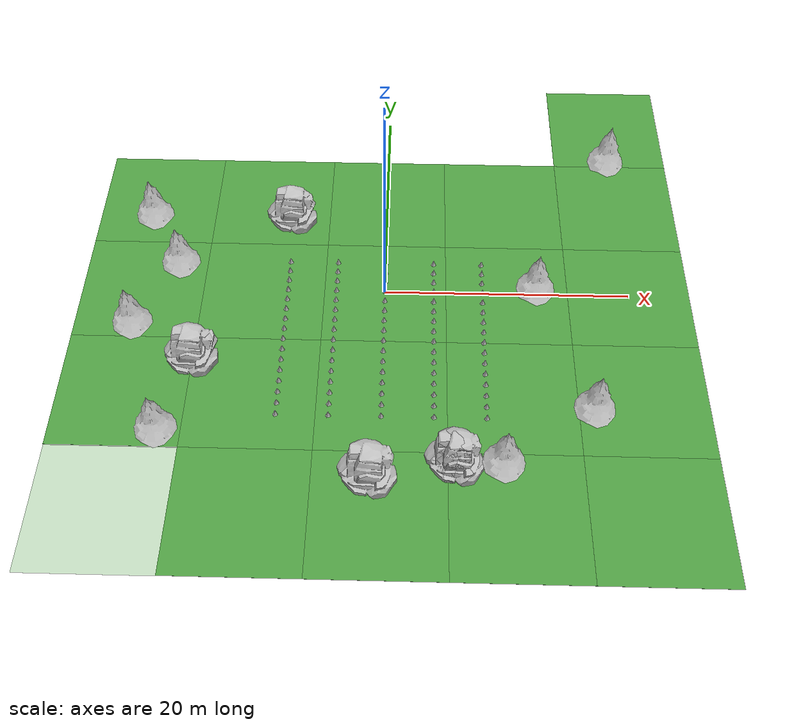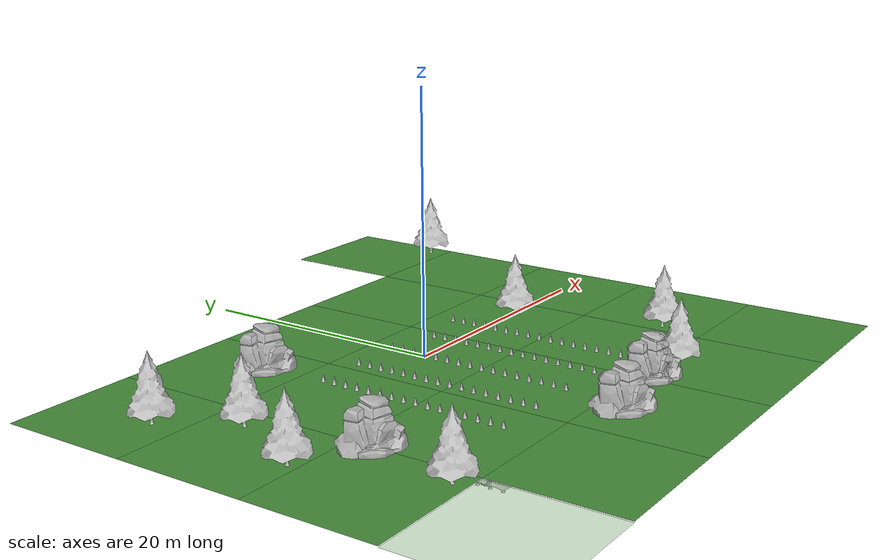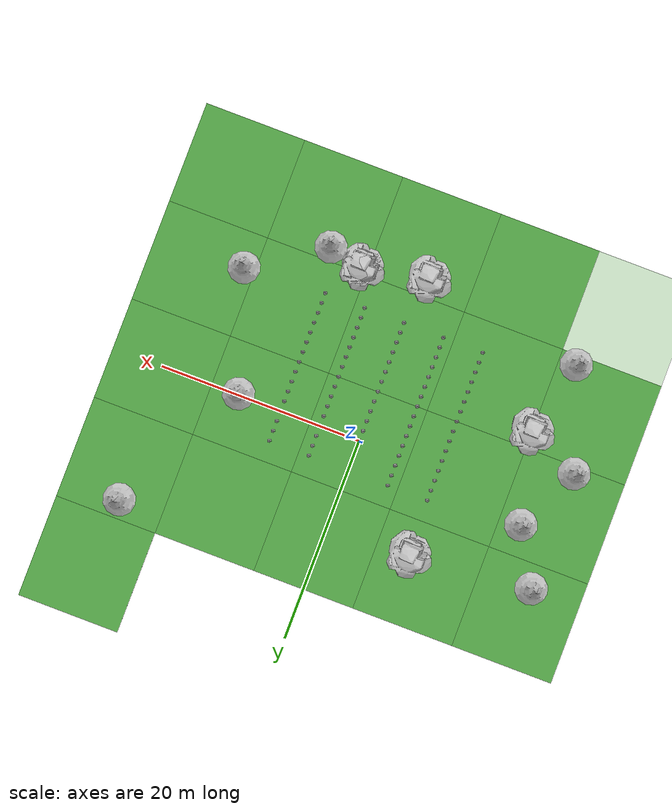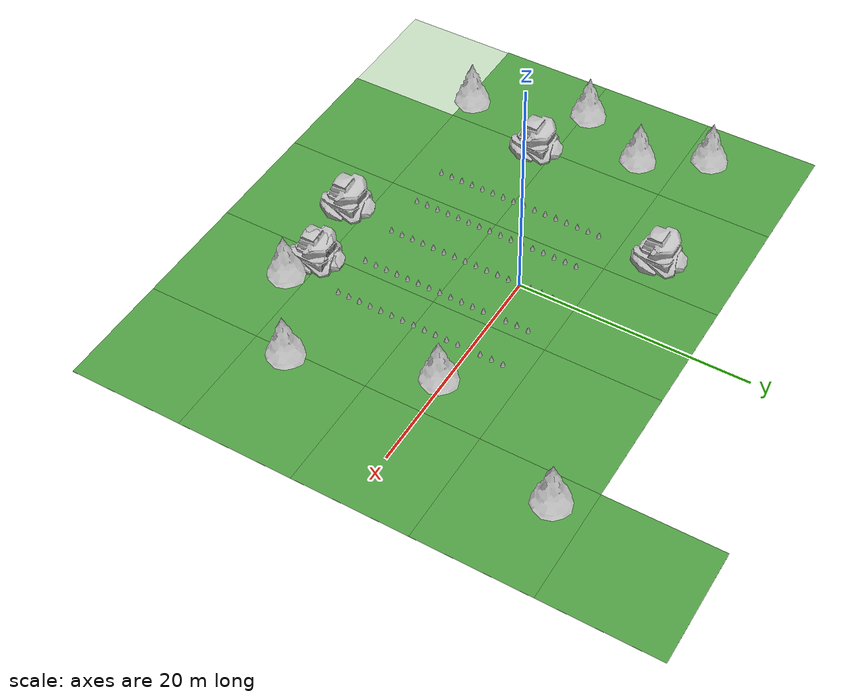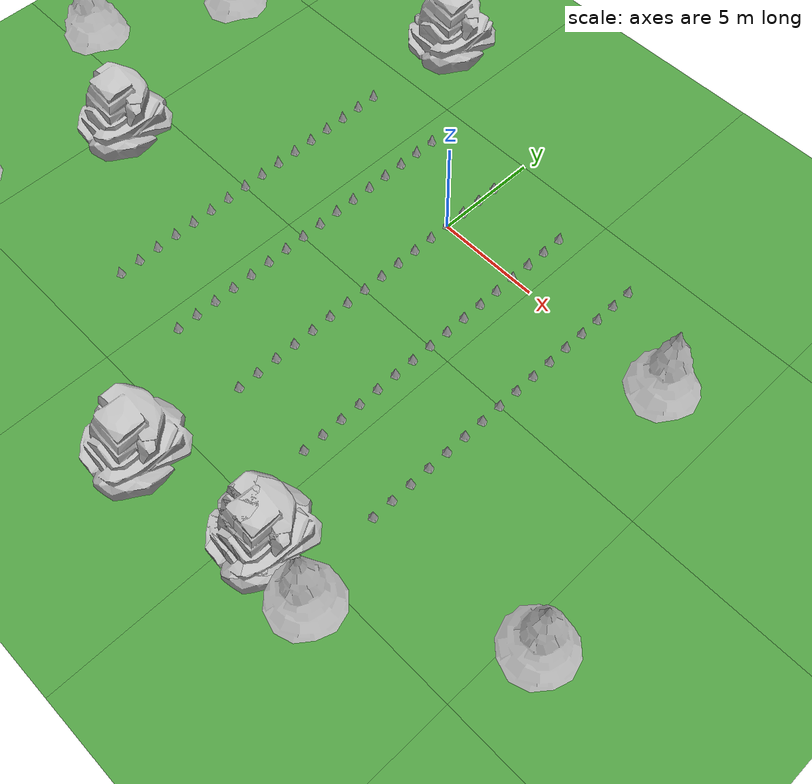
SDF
<sdf version="1.5">
 <world name="vrc_task_1">
  <scene>
   <ambient>0.4 0.4 0.4 1.0</ambient>
   <grid>false</grid>
   <sky><clouds><speed>10</speed></clouds></sky>
  </scene>
  <physics type="ode">
   <gravity>0 0 -9.81</gravity>
   <ode>
    <solver>
     <use_dynamic_moi_rescaling>true</use_dynamic_moi_rescaling>
     <type>quick</type>
     <iters>50</iters>
     <sor>1.0</sor>
    </solver>
    <constraints>
     <cfm>0.0</cfm>
     <erp>0.2</erp>
     <contact_max_correcting_vel>100.0</contact_max_correcting_vel>
     <contact_surface_layer>0.0</contact_surface_layer>
    </constraints>
   </ode>
   <real_time_update_rate>1000</real_time_update_rate>
   <max_step_size>0.0025</max_step_size>
  </physics>
  <light type="directional" name="sun">
   <cast_shadows>false</cast_shadows>
   <pose>0 0 100 0 0 0</pose>
   <diffuse>0.8 0.8 0.8 1</diffuse>
   <specular>0.9 0.9 0.9 1</specular>
   <attenuation>
    <range>1000</range>
    <constant>0.9</constant>
    <linear>0.01</linear>
    <quadratic>0.001</quadratic>
   </attenuation>
   <direction>0.2 0.2 -0.9</direction>
  </light>
  <include><uri>model://grass_plane_small</uri></include>
  <include><name>pine_tree_1</name><uri>model://pine_tree</uri><pose>9 -16.23 0   0 0 0</pose></include>
  <include><name>pine_tree_2</name><uri>model://pine_tree</uri><pose>-16.599 -13.973 0   0 0 0</pose></include>
  <include><name>pine_tree_3</name><uri>model://pine_tree</uri><pose>-20 -4.28 0   0 0 0</pose></include>
  <include><name>pine_tree_4</name><uri>model://pine_tree</uri><pose>-17 2 0   0 0 0</pose></include>
  <include><name>pine_tree_5</name><uri>model://pine_tree</uri><pose>-20 7.27 0   0 0 0</pose></include>
  <include><name>pine_tree_6</name><uri>model://pine_tree</uri><pose>19 13 1.58   0 0 0</pose></include>
  <include><name>pine_tree_7</name><uri>model://pine_tree</uri><pose>12.24 -0.15 0   0 0 0</pose></include>
  <include><name>pine_tree_8</name><uri>model://pine_tree</uri><pose>16 -11.5 0   0 0 0</pose></include>
  <include><name>small_tree_1</name><uri>model://pine_tree</uri><pose>-8 -12 -4.5   0 0 0</pose></include>
  <include><name>small_tree_2</name><uri>model://pine_tree</uri><pose>-8 -11 -4.5   0 0 0</pose></include>
  <include><name>small_tree_3</name><uri>model://pine_tree</uri><pose>-8 -10 -4.5   0 0 0</pose></include>
  <include><name>small_tree_4</name><uri>model://pine_tree</uri><pose>-8 -9 -4.5   0 0 0</pose></include>
  <include><name>small_tree_5</name><uri>model://pine_tree</uri><pose>-8 -8 -4.5   0 0 0</pose></include>
  <include><name>small_tree_6</name><uri>model://pine_tree</uri><pose>-8 -7 -4.5   0 0 0</pose></include>
  <include><name>small_tree_7</name><uri>model://pine_tree</uri><pose>-8 -6 -4.5   0 0 0</pose></include>
  <include><name>small_tree_8</name><uri>model://pine_tree</uri><pose>-8 -5 -4.5   0 0 0</pose></include>
  <include><name>small_tree_9</name><uri>model://pine_tree</uri><pose>-8 -4 -4.5   0 0 0</pose></include>
  <include><name>small_tree_10</name><uri>model://pine_tree</uri><pose>-8 -3 -4.5   0 0 0</pose></include>
  <include><name>small_tree_11</name><uri>model://pine_tree</uri><pose>-8 -2 -4.5   0 0 0</pose></include>
  <include><name>small_tree_12</name><uri>model://pine_tree</uri><pose>-8 -1 -4.5   0 0 0</pose></include>
  <include><name>small_tree_13</name><uri>model://pine_tree</uri><pose>-8 0 -4.5   0 0 0</pose></include>
  <include><name>small_tree_14</name><uri>model://pine_tree</uri><pose>-8 1 -4.5   0 0 0</pose></include>
  <include><name>small_tree_15</name><uri>model://pine_tree</uri><pose>-8 2 -4.5   0 0 0</pose></include>
  <include><name>small_tree_16</name><uri>model://pine_tree</uri><pose>-8 3 -4.5   0 0 0</pose></include>
  <include><name>small_tree_1a</name><uri>model://pine_tree</uri><pose>-4 -12 -4.5   0 0 0</pose></include>
  <include><name>small_tree_2a</name><uri>model://pine_tree</uri><pose>-4 -11 -4.5   0 0 0</pose></include>
  <include><name>small_tree_3a</name><uri>model://pine_tree</uri><pose>-4 -10 -4.5   0 0 0</pose></include>
  <include><name>small_tree_4a</name><uri>model://pine_tree</uri><pose>-4 -9 -4.5   0 0 0</pose></include>
  <include><name>small_tree_5a</name><uri>model://pine_tree</uri><pose>-4 -8 -4.5   0 0 0</pose></include>
  <include><name>small_tree_6a</name><uri>model://pine_tree</uri><pose>-4 -7 -4.5   0 0 0</pose></include>
  <include><name>small_tree_7a</name><uri>model://pine_tree</uri><pose>-4 -6 -4.5   0 0 0</pose></include>
  <include><name>small_tree_8a</name><uri>model://pine_tree</uri><pose>-4 -5 -4.5   0 0 0</pose></include>
  <include><name>small_tree_9a</name><uri>model://pine_tree</uri><pose>-4 -4 -4.5   0 0 0</pose></include>
  <include><name>small_tree_10a</name><uri>model://pine_tree</uri><pose>-4 -3 -4.5   0 0 0</pose></include>
  <include><name>small_tree_11a</name><uri>model://pine_tree</uri><pose>-4 -2 -4.5   0 0 0</pose></include>
  <include><name>small_tree_12a</name><uri>model://pine_tree</uri><pose>-4 -1 -4.5   0 0 0</pose></include>
  <include><name>small_tree_13a</name><uri>model://pine_tree</uri><pose>-4 0 -4.5   0 0 0</pose></include>
  <include><name>small_tree_14a</name><uri>model://pine_tree</uri><pose>-4 1 -4.5   0 0 0</pose></include>
  <include><name>small_tree_15a</name><uri>model://pine_tree</uri><pose>-4 2 -4.5   0 0 0</pose></include>
  <include><name>small_tree_16a</name><uri>model://pine_tree</uri><pose>-4 3 -4.5   0 0 0</pose></include>
  <include><name>small_tree_1b</name><uri>model://pine_tree</uri><pose>0 -12 -4.5   0 0 0</pose></include>
  <include><name>small_tree_2b</name><uri>model://pine_tree</uri><pose>0 -11 -4.5   0 0 0</pose></include>
  <include><name>small_tree_3b</name><uri>model://pine_tree</uri><pose>0 -10 -4.5   0 0 0</pose></include>
  <include><name>small_tree_4b</name><uri>model://pine_tree</uri><pose>0 -9 -4.5   0 0 0</pose></include>
  <include><name>small_tree_5b</name><uri>model://pine_tree</uri><pose>0 -8 -4.5   0 0 0</pose></include>
  <include><name>small_tree_6b</name><uri>model://pine_tree</uri><pose>0 -7 -4.5   0 0 0</pose></include>
  <include><name>small_tree_7b</name><uri>model://pine_tree</uri><pose>0 -6 -4.5   0 0 0</pose></include>
  <include><name>small_tree_8b</name><uri>model://pine_tree</uri><pose>0 -5 -4.5   0 0 0</pose></include>
  <include><name>small_tree_9b</name><uri>model://pine_tree</uri><pose>0 -4 -4.5   0 0 0</pose></include>
  <include><name>small_tree_10b</name><uri>model://pine_tree</uri><pose>0 -3 -4.5   0 0 0</pose></include>
  <include><name>small_tree_11b</name><uri>model://pine_tree</uri><pose>0 -2 -4.5   0 0 0</pose></include>
  <include><name>small_tree_12b</name><uri>model://pine_tree</uri><pose>0 -1 -4.5   0 0 0</pose></include>
  <include><name>small_tree_13b</name><uri>model://pine_tree</uri><pose>0 0 -4.5   0 0 0</pose></include>
  <include><name>small_tree_14b</name><uri>model://pine_tree</uri><pose>0 1 -4.5   0 0 0</pose></include>
  <include><name>small_tree_15b</name><uri>model://pine_tree</uri><pose>0 2 -4.5   0 0 0</pose></include>
  <include><name>small_tree_16b</name><uri>model://pine_tree</uri><pose>0 3 -4.5   0 0 0</pose></include>
  <include><name>small_tree_1c</name><uri>model://pine_tree</uri><pose>4 -12 -4.5   0 0 0</pose></include>
  <include><name>small_tree_2c</name><uri>model://pine_tree</uri><pose>4 -11 -4.5   0 0 0</pose></include>
  <include><name>small_tree_3c</name><uri>model://pine_tree</uri><pose>4 -10 -4.5   0 0 0</pose></include>
  <include><name>small_tree_4c</name><uri>model://pine_tree</uri><pose>4 -9 -4.5   0 0 0</pose></include>
  <include><name>small_tree_5c</name><uri>model://pine_tree</uri><pose>4 -8 -4.5   0 0 0</pose></include>
  <include><name>small_tree_6c</name><uri>model://pine_tree</uri><pose>4 -7 -4.5   0 0 0</pose></include>
  <include><name>small_tree_7c</name><uri>model://pine_tree</uri><pose>4 -6 -4.5   0 0 0</pose></include>
  <include><name>small_tree_8c</name><uri>model://pine_tree</uri><pose>4 -5 -4.5   0 0 0</pose></include>
  <include><name>small_tree_9c</name><uri>model://pine_tree</uri><pose>4 -4 -4.5   0 0 0</pose></include>
  <include><name>small_tree_10c</name><uri>model://pine_tree</uri><pose>4 -3 -4.5   0 0 0</pose></include>
  <include><name>small_tree_11c</name><uri>model://pine_tree</uri><pose>4 -2 -4.5   0 0 0</pose></include>
  <include><name>small_tree_12c</name><uri>model://pine_tree</uri><pose>4 -1 -4.5   0 0 0</pose></include>
  <include><name>small_tree_13c</name><uri>model://pine_tree</uri><pose>4 0 -4.5   0 0 0</pose></include>
  <include><name>small_tree_14c</name><uri>model://pine_tree</uri><pose>4 1 -4.5   0 0 0</pose></include>
  <include><name>small_tree_15c</name><uri>model://pine_tree</uri><pose>4 2 -4.5   0 0 0</pose></include>
  <include><name>small_tree_16c</name><uri>model://pine_tree</uri><pose>4 3 -4.5   0 0 0</pose></include>
  <include><name>small_tree_1d</name><uri>model://pine_tree</uri><pose>8 -12 -4.5   0 0 0</pose></include>
  <include><name>small_tree_2d</name><uri>model://pine_tree</uri><pose>8 -11 -4.5   0 0 0</pose></include>
  <include><name>small_tree_3d</name><uri>model://pine_tree</uri><pose>8 -10 -4.5   0 0 0</pose></include>
  <include><name>small_tree_4d</name><uri>model://pine_tree</uri><pose>8 -9 -4.5   0 0 0</pose></include>
  <include><name>small_tree_5d</name><uri>model://pine_tree</uri><pose>8 -8 -4.5   0 0 0</pose></include>
  <include><name>small_tree_6d</name><uri>model://pine_tree</uri><pose>8 -7 -4.5   0 0 0</pose></include>
  <include><name>small_tree_7d</name><uri>model://pine_tree</uri><pose>8 -6 -4.5   0 0 0</pose></include>
  <include><name>small_tree_8d</name><uri>model://pine_tree</uri><pose>8 -5 -4.5   0 0 0</pose></include>
  <include><name>small_tree_9d</name><uri>model://pine_tree</uri><pose>8 -4 -4.5   0 0 0</pose></include>
  <include><name>small_tree_10d</name><uri>model://pine_tree</uri><pose>8 -3 -4.5   0 0 0</pose></include>
  <include><name>small_tree_11d</name><uri>model://pine_tree</uri><pose>8 -2 -4.5   0 0 0</pose></include>
  <include><name>small_tree_12d</name><uri>model://pine_tree</uri><pose>8 -1 -4.5   0 0 0</pose></include>
  <include><name>small_tree_13d</name><uri>model://pine_tree</uri><pose>8 0 -4.5   0 0 0</pose></include>
  <include><name>small_tree_14d</name><uri>model://pine_tree</uri><pose>8 1 -4.5   0 0 0</pose></include>
  <include><name>small_tree_15d</name><uri>model://pine_tree</uri><pose>8 2 -4.5   0 0 0</pose></include>
  <include><name>small_tree_16d</name><uri>model://pine_tree</uri><pose>8 3 -4.5   0 0 0</pose></include>
  <include><name>rock1</name><uri>model://rock</uri><pose>-14.9947 -6.75851 0  0 0 0</pose></include>
  <include><name>rock2</name><uri>model://rock</uri><pose>-8.22392 8.23237 0	0 0 0</pose></include>
  <include><name>rock3</name><uri>model://rock</uri><pose>5.58434 -15.6852 0	0 0 0</pose></include>
  <include><name>rock4</name><uri>model://rock</uri><pose>-0.782785 -16.8448 0  0 0 0</pose></include>
  <include><name>rock5</name><uri>model://rock</uri><pose>5.5843 -15.6852 0  0 0 0</pose></include>
 </world>
</sdf>

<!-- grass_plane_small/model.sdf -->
<sdf version='1.4'>
  <model name='grass_plan_small'>
    <static>true</static>
    <link name='link'>
      <collision name='collision'>
        <geometry>
          <plane>
            <normal>0 0 1</normal>
            <size>50 50</size>
          </plane>
        </geometry>
        <surface>
          <friction>
            <ode>
              <mu>0.5</mu>
              <mu2>.5</mu2>
            </ode>
          </friction>
        </surface>
      </collision>

      <visual name='visual_0'>
        <pose>-20 -20 0 0 0 0</pose>

        <cast_shadows>false</cast_shadows>
        <geometry>
          <plane>
            <normal>0 0 1</normal>
            <size>10 10</size>
          </plane>
        </geometry>
        <material>
          <script>
            <uri>model://grass_plane/materials/scripts</uri>
            <uri>model://grass_plane/materials/textures</uri>
            <name>vrc/grass</name>
          </script>
        </material>
      </visual>

      <visual name='visual_1'>
        <pose>-10 -20 0 0 0 0</pose>

        <cast_shadows>false</cast_shadows>
        <geometry>
          <plane>
            <normal>0 0 1</normal>
            <size>10 10</size>
          </plane>
        </geometry>
        <material>
          <script>
            <uri>model://grass_plane/materials/scripts</uri>
            <uri>model://grass_plane/materials/textures</uri>
            <name>vrc/grass</name>
          </script>
        </material>
      </visual>

      <visual name='visual_2'>
        <pose>0 -20 0 0 0 0</pose>

        <cast_shadows>false</cast_shadows>
        <geometry>
          <plane>
            <normal>0 0 1</normal>
            <size>10 10</size>
          </plane>
        </geometry>
        <material>
          <script>
            <uri>model://grass_plane/materials/scripts</uri>
            <uri>model://grass_plane/materials/textures</uri>
            <name>vrc/grass</name>
          </script>
        </material>
      </visual>

      <visual name='visual_3'>
        <pose>10 -20 0 0 0 0</pose>

        <cast_shadows>false</cast_shadows>
        <geometry>
          <plane>
            <normal>0 0 1</normal>
            <size>10 10</size>
          </plane>
        </geometry>
        <material>
          <script>
            <uri>model://grass_plane/materials/scripts</uri>
            <uri>model://grass_plane/materials/textures</uri>
            <name>vrc/grass</name>
          </script>
        </material>
      </visual>

      <visual name='visual_4'>
        <pose>20 -20 0 0 0 0</pose>

        <cast_shadows>false</cast_shadows>
        <geometry>
          <plane>
            <normal>0 0 1</normal>
            <size>10 10</size>
          </plane>
        </geometry>
        <material>
          <script>
            <uri>model://grass_plane/materials/scripts</uri>
            <uri>model://grass_plane/materials/textures</uri>
            <name>vrc/grass</name>
          </script>
        </material>
      </visual>

      <visual name='visual_6'>
        <pose>-20 -10 0 0 0 0</pose>

        <cast_shadows>false</cast_shadows>
        <geometry>
          <plane>
            <normal>0 0 1</normal>
            <size>10 10</size>
          </plane>
        </geometry>
        <material>
          <script>
            <uri>model://grass_plane/materials/scripts</uri>
            <uri>model://grass_plane/materials/textures</uri>
            <name>vrc/grass</name>
          </script>
        </material>
      </visual>

      <visual name='visual_7'>
        <pose>-10 -10 0 0 0 0</pose>

        <cast_shadows>false</cast_shadows>
        <geometry>
          <plane>
            <normal>0 0 1</normal>
            <size>10 10</size>
          </plane>
        </geometry>
        <material>
          <script>
            <uri>model://grass_plane/materials/scripts</uri>
            <uri>model://grass_plane/materials/textures</uri>
            <name>vrc/grass</name>
          </script>
        </material>
      </visual>

      <visual name='visual_8'>
        <pose>0 -10 0 0 0 0</pose>

        <cast_shadows>false</cast_shadows>
        <geometry>
          <plane>
            <normal>0 0 1</normal>
            <size>10 10</size>
          </plane>
        </geometry>
        <material>
          <script>
            <uri>model://grass_plane/materials/scripts</uri>
            <uri>model://grass_plane/materials/textures</uri>
            <name>vrc/grass</name>
          </script>
        </material>
      </visual>

      <visual name='visual_9'>
        <pose>10 -10 0 0 0 0</pose>

        <cast_shadows>false</cast_shadows>
        <geometry>
          <plane>
            <normal>0 0 1</normal>
            <size>10 10</size>
          </plane>
        </geometry>
        <material>
          <script>
            <uri>model://grass_plane/materials/scripts</uri>
            <uri>model://grass_plane/materials/textures</uri>
            <name>vrc/grass</name>
          </script>
        </material>
      </visual>

      <visual name='visual_10'>
        <pose>20 -10 0 0 0 0</pose>

        <cast_shadows>false</cast_shadows>
        <geometry>
          <plane>
            <normal>0 0 1</normal>
            <size>10 10</size>
          </plane>
        </geometry>
        <material>
          <script>
            <uri>model://grass_plane/materials/scripts</uri>
            <uri>model://grass_plane/materials/textures</uri>
            <name>vrc/grass</name>
          </script>
        </material>
      </visual>

      <visual name='visual_13'>
        <pose>-20 0 0 0 0 0</pose>

        <cast_shadows>false</cast_shadows>
        <geometry>
          <plane>
            <normal>0 0 1</normal>
            <size>10 10</size>
          </plane>
        </geometry>
        <material>
          <script>
            <uri>model://grass_plane/materials/scripts</uri>
            <uri>model://grass_plane/materials/textures</uri>
            <name>vrc/grass</name>
          </script>
        </material>
      </visual>

      <visual name='visual_14'>
        <pose>-10 0 0 0 0 0</pose>

        <cast_shadows>false</cast_shadows>
        <geometry>
          <plane>
            <normal>0 0 1</normal>
            <size>10 10</size>
          </plane>
        </geometry>
        <material>
          <script>
            <uri>model://grass_plane/materials/scripts</uri>
            <uri>model://grass_plane/materials/textures</uri>
            <name>vrc/grass</name>
          </script>
        </material>
      </visual>

      <visual name='visual_15'>
        <pose>0 0 0 0 0 0</pose>

        <cast_shadows>false</cast_shadows>
        <geometry>
          <plane>
            <normal>0 0 1</normal>
            <size>10 10</size>
          </plane>
        </geometry>
        <material>
          <script>
            <uri>model://grass_plane/materials/scripts</uri>
            <uri>model://grass_plane/materials/textures</uri>
            <name>vrc/grass</name>
          </script>
        </material>
      </visual>

      <visual name='visual_16'>
        <pose>10 0 0 0 0 0</pose>

        <cast_shadows>false</cast_shadows>
        <geometry>
          <plane>
            <normal>0 0 1</normal>
            <size>10 10</size>
          </plane>
        </geometry>
        <material>
          <script>
            <uri>model://grass_plane/materials/scripts</uri>
            <uri>model://grass_plane/materials/textures</uri>
            <name>vrc/grass</name>
          </script>
        </material>
      </visual>

      <visual name='visual_17'>
        <pose>20 0 0 0 0 0</pose>

        <cast_shadows>false</cast_shadows>
        <geometry>
          <plane>
            <normal>0 0 1</normal>
            <size>10 10</size>
          </plane>
        </geometry>
        <material>
          <script>
            <uri>model://grass_plane/materials/scripts</uri>
            <uri>model://grass_plane/materials/textures</uri>
            <name>vrc/grass</name>
          </script>
        </material>
      </visual>

      <visual name='visual_22'>
        <pose>-20 10 0 0 0 0</pose>

        <cast_shadows>false</cast_shadows>
        <geometry>
          <plane>
            <normal>0 0 1</normal>
            <size>10 10</size>
          </plane>
        </geometry>
        <material>
          <script>
            <uri>model://grass_plane/materials/scripts</uri>
            <uri>model://grass_plane/materials/textures</uri>
            <name>vrc/grass</name>
          </script>
        </material>
      </visual>

      <visual name='visual_23'>
        <pose>-10 10 0 0 0 0</pose>

        <cast_shadows>false</cast_shadows>
        <geometry>
          <plane>
            <normal>0 0 1</normal>
            <size>10 10</size>
          </plane>
        </geometry>
        <material>
          <script>
            <uri>model://grass_plane/materials/scripts</uri>
            <uri>model://grass_plane/materials/textures</uri>
            <name>vrc/grass</name>
          </script>
        </material>
      </visual>

      <visual name='visual_24'>
        <pose>0 10 0 0 0 0</pose>

        <cast_shadows>false</cast_shadows>
        <geometry>
          <plane>
            <normal>0 0 1</normal>
            <size>10 10</size>
          </plane>
        </geometry>
        <material>
          <script>
            <uri>model://grass_plane/materials/scripts</uri>
            <uri>model://grass_plane/materials/textures</uri>
            <name>vrc/grass</name>
          </script>
        </material>
      </visual>

      <visual name='visual_25'>
        <pose>10 10 0 0 0 0</pose>

        <cast_shadows>false</cast_shadows>
        <geometry>
          <plane>
            <normal>0 0 1</normal>
            <size>10 10</size>
          </plane>
        </geometry>
        <material>
          <script>
            <uri>model://grass_plane/materials/scripts</uri>
            <uri>model://grass_plane/materials/textures</uri>
            <name>vrc/grass</name>
          </script>
        </material>
      </visual>

      <visual name='visual_26'>
        <pose>20 10 0 0 0 0</pose>

        <cast_shadows>false</cast_shadows>
        <geometry>
          <plane>
            <normal>0 0 1</normal>
            <size>10 10</size>
          </plane>
        </geometry>
        <material>
          <script>
            <uri>model://grass_plane/materials/scripts</uri>
            <uri>model://grass_plane/materials/textures</uri>
            <name>vrc/grass</name>
          </script>
        </material>
      </visual>

      <visual name='visual_32'>
        <pose>20 20 0 0 0 0</pose>

        <cast_shadows>false</cast_shadows>
        <geometry>
          <plane>
            <normal>0 0 1</normal>
            <size>10 10</size>
          </plane>
        </geometry>
        <material>
          <script>
            <uri>model://grass_plane/materials/scripts</uri>
            <uri>model://grass_plane/materials/textures</uri>
            <name>vrc/grass</name>
          </script>
        </material>
      </visual>
    </link>
  </model>
</sdf>

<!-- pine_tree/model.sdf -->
<sdf version="1.6">
  <model name="pine_tree">
    <static>true</static>
    <link name="link">
      <collision name="collision">
        <geometry>
          <mesh>
            <uri>file://isr-testbed/pine_tree/meshes/pine_tree.dae</uri>
          </mesh>
        </geometry>
      </collision>
      <visual name="branch">
        <geometry>
          <mesh>
            <uri>file://isr-testbed/pine_tree/meshes/pine_tree.dae</uri>
            <submesh>
              <name>Branch</name>
            </submesh>
          </mesh>
        </geometry>
        <material>
          <script>
            <uri>file://isr-testbed/pine_tree/materials/scripts/</uri>
            <uri>file://isr-testbed/pine_tree/materials/textures/</uri>
            <name>PineTree/Branch</name>
          </script>
        </material>
      </visual>
      <visual name="bark">
        <geometry>
          <mesh>
            <uri>file://isr-testbed/pine_tree/meshes/pine_tree.dae</uri>
            <submesh>
              <name>Bark</name>
            </submesh>
          </mesh>
        </geometry>
        <material>
          <script>
            <uri>file://isr-testbed/pine_tree/materials/scripts/</uri>
            <uri>file://isr-testbed/pine_tree/materials/textures/</uri>
            <name>PineTree/Bark</name>
          </script>
        </material>
      </visual>
    </link>
  </model>
</sdf>

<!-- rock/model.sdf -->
<sdf version='1.4'>
  <model name="rock">
      <static>1</static>
        <link name='link_1'>
            <visual name='visual'>
            <pose frame=''>0 0 0 0 0 0</pose>
            <geometry>
            <mesh>
                <uri>model://rock/meshes/rock.dae</uri>
                <scale>1.0 1.0 1.0</scale>
            </mesh>
            </geometry>
            <cast_shadows>0</cast_shadows>
            <transparency>0</transparency>
        </visual>

        <collision name='collision'>
            <laser_retro>0</laser_retro>
            <pose frame=''>0 0 0 0 0 0</pose>
            <geometry>
            <mesh>
                <uri>model://rock/meshes/rock.dae</uri>
                <scale>1.0 1.0 1.0</scale>
            </mesh>
            </geometry>
        </collision>
        </link>
  </model>
</sdf>
